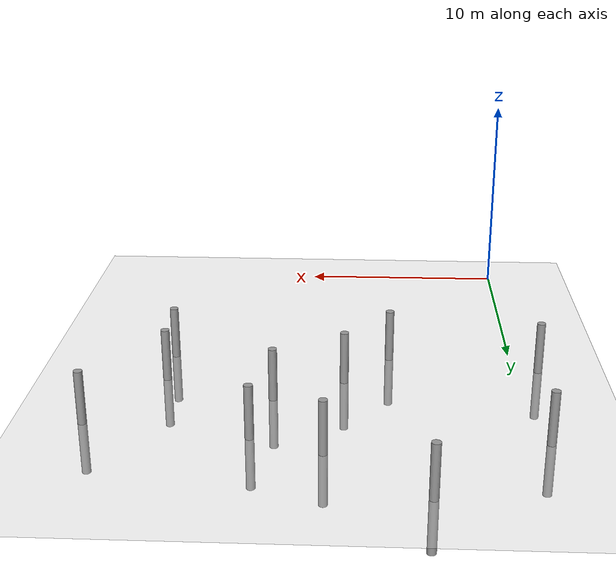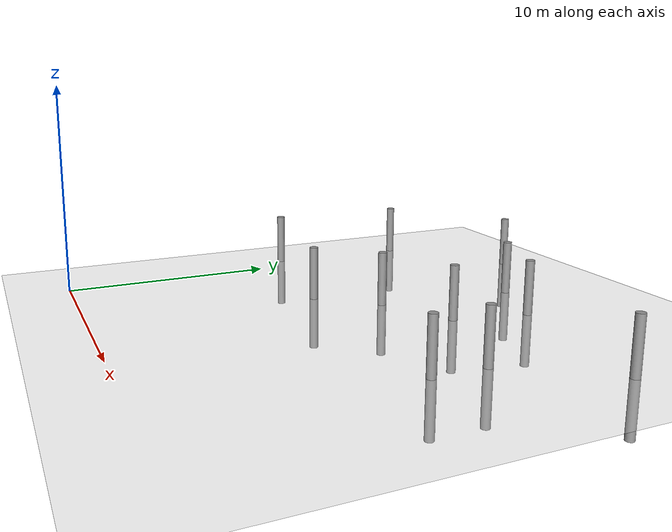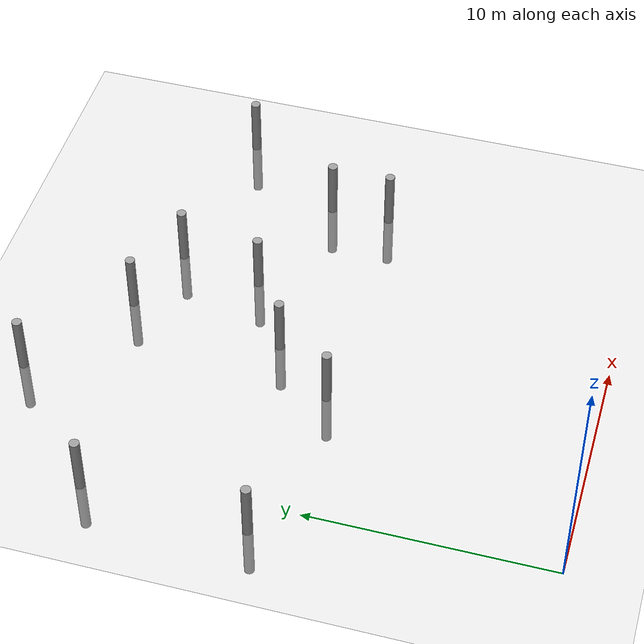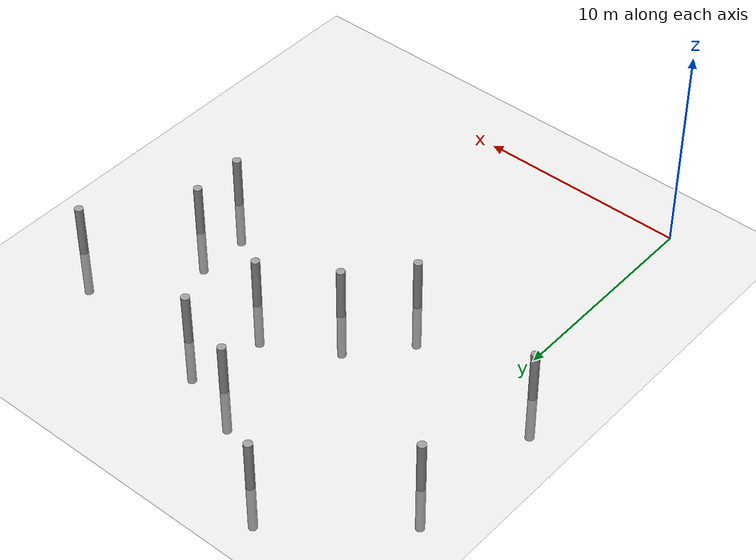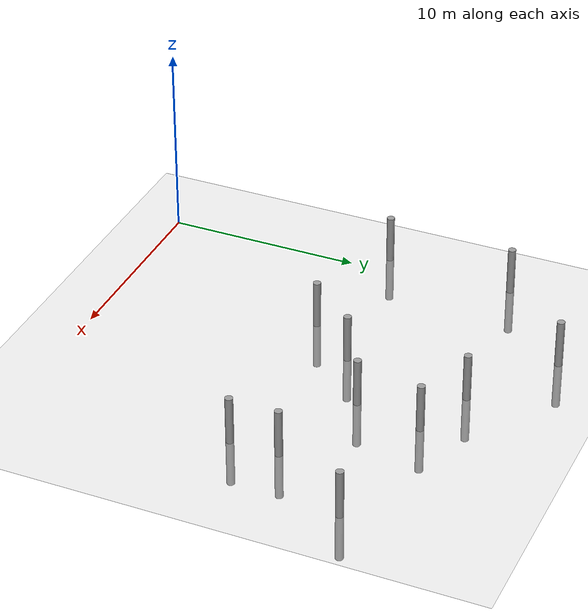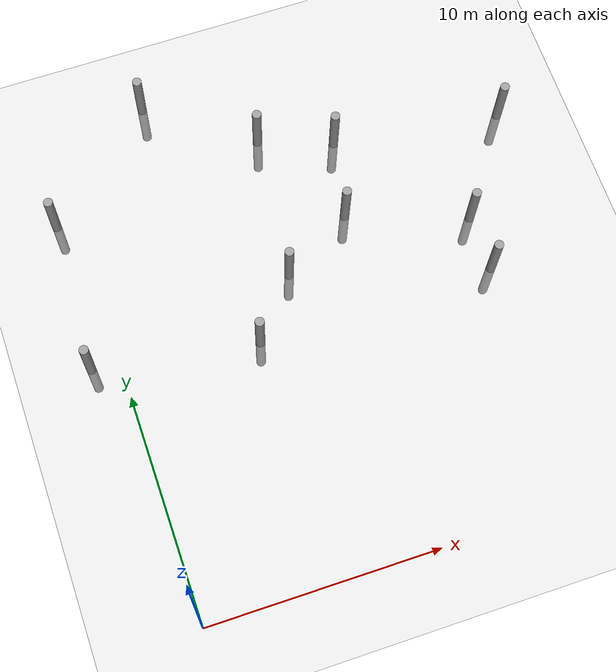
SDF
<sdf version="1.6">
 <world name="default">
  <model name="ground_plane">
   <static>1</static>
   <link name="link">
    <collision name="collision">
     <geometry><plane><normal>0 0 1</normal><size>100 100</size></plane></geometry>
     <surface><friction><ode><mu>100</mu><mu2>50</mu2></ode></friction></surface>
    </collision>
    <visual name="visual">
     <cast_shadows>0</cast_shadows>
     <geometry><plane><normal>0 0 1</normal><size>100 100</size></plane></geometry>
     <material>
      <script><uri>file://media/materials/scripts/gazebo.material</uri><name>Gazebo/Grey</name></script>
     </material>
    </visual>
   </link>
  </model>
  <model name="empty_pillars_4">
   <model name="empty_pillar_clone_13">
    <link name="link">
     <inertial>
      <mass>1</mass>
      <inertia><ixx>0.145833</ixx><ixy>0</ixy><ixz>0</ixz><iyy>0.145833</iyy><iyz>0</iyz><izz>0.125</izz></inertia>
     </inertial>
     <visual name="visual">
      <geometry><cylinder><radius>0.2</radius><length>5</length></cylinder></geometry>
      <material>
       <script><name>Gazebo/Grey</name><uri>file://media/materials/scripts/gazebo.material</uri></script>
       <shader type="vertex"><normal_map>__default__</normal_map></shader>
       <ambient>0.3 0.3 0.3 1</ambient>
       <diffuse>0.7 0.7 0.7 1</diffuse>
       <specular>0.01 0.01 0.01 1</specular>
       <emissive>0 0 0 1</emissive>
      </material>
     </visual>
     <collision name="collision">
      <geometry><cylinder><radius>0.05</radius><length>5</length></cylinder></geometry>
      <surface>
       <friction>
        <ode><mu>1</mu><mu2>1</mu2><fdir1>0 0 0</fdir1><slip1>0</slip1><slip2>0</slip2></ode>
        <torsional>
         <coefficient>1</coefficient>
         <patch_radius>0</patch_radius>
         <surface_radius>0</surface_radius>
         <use_patch_radius>1</use_patch_radius>
         <ode><slip>0</slip></ode>
        </torsional>
       </friction>
       <bounce><restitution_coefficient>0</restitution_coefficient><threshold>1e+06</threshold></bounce>
       <contact>
        <collide_without_contact>0</collide_without_contact>
        <collide_without_contact_bitmask>1</collide_without_contact_bitmask>
        <collide_bitmask>1</collide_bitmask>
        <ode>
         <soft_cfm>0</soft_cfm>
         <soft_erp>0.2</soft_erp>
         <kp>1e+13</kp>
         <kd>1</kd>
         <max_vel>0.01</max_vel>
         <min_depth>0</min_depth>
        </ode>
        <bullet>
         <split_impulse>1</split_impulse>
         <split_impulse_penetration_threshold>-0.01</split_impulse_penetration_threshold>
         <soft_cfm>0</soft_cfm>
         <soft_erp>0.2</soft_erp>
         <kp>1e+13</kp>
         <kd>1</kd>
        </bullet>
       </contact>
      </surface>
     </collision>
    </link>
    <static>0</static>
    <pose>-9.01464 -14.4259 0 0 -0 0</pose>
   </model>
   <model name="empty_pillar_clone_35">
    <link name="link">
     <inertial>
      <mass>1</mass>
      <inertia><ixx>0.145833</ixx><ixy>0</ixy><ixz>0</ixz><iyy>0.145833</iyy><iyz>0</iyz><izz>0.125</izz></inertia>
     </inertial>
     <visual name="visual">
      <geometry><cylinder><radius>0.2</radius><length>5</length></cylinder></geometry>
      <material>
       <script><name>Gazebo/Grey</name><uri>file://media/materials/scripts/gazebo.material</uri></script>
       <shader type="vertex"><normal_map>__default__</normal_map></shader>
       <ambient>0.3 0.3 0.3 1</ambient>
       <diffuse>0.7 0.7 0.7 1</diffuse>
       <specular>0.01 0.01 0.01 1</specular>
       <emissive>0 0 0 1</emissive>
      </material>
     </visual>
     <collision name="collision">
      <geometry><cylinder><radius>0.05</radius><length>5</length></cylinder></geometry>
      <surface>
       <friction>
        <ode><mu>1</mu><mu2>1</mu2><fdir1>0 0 0</fdir1><slip1>0</slip1><slip2>0</slip2></ode>
        <torsional>
         <coefficient>1</coefficient>
         <patch_radius>0</patch_radius>
         <surface_radius>0</surface_radius>
         <use_patch_radius>1</use_patch_radius>
         <ode><slip>0</slip></ode>
        </torsional>
       </friction>
       <bounce><restitution_coefficient>0</restitution_coefficient><threshold>1e+06</threshold></bounce>
       <contact>
        <collide_without_contact>0</collide_without_contact>
        <collide_without_contact_bitmask>1</collide_without_contact_bitmask>
        <collide_bitmask>1</collide_bitmask>
        <ode>
         <soft_cfm>0</soft_cfm>
         <soft_erp>0.2</soft_erp>
         <kp>1e+13</kp>
         <kd>1</kd>
         <max_vel>0.01</max_vel>
         <min_depth>0</min_depth>
        </ode>
        <bullet>
         <split_impulse>1</split_impulse>
         <split_impulse_penetration_threshold>-0.01</split_impulse_penetration_threshold>
         <soft_cfm>0</soft_cfm>
         <soft_erp>0.2</soft_erp>
         <kp>1e+13</kp>
         <kd>1</kd>
        </bullet>
       </contact>
      </surface>
     </collision>
    </link>
    <static>0</static>
    <pose>-19.4431 -17.0281 0 0 -0 0</pose>
   </model>
   <model name="empty_pillar_clone_36">
    <link name="link">
     <inertial>
      <mass>1</mass>
      <inertia><ixx>0.145833</ixx><ixy>0</ixy><ixz>0</ixz><iyy>0.145833</iyy><iyz>0</iyz><izz>0.125</izz></inertia>
     </inertial>
     <visual name="visual">
      <geometry><cylinder><radius>0.2</radius><length>5</length></cylinder></geometry>
      <material>
       <script><name>Gazebo/Grey</name><uri>file://media/materials/scripts/gazebo.material</uri></script>
       <shader type="vertex"><normal_map>__default__</normal_map></shader>
       <ambient>0.3 0.3 0.3 1</ambient>
       <diffuse>0.7 0.7 0.7 1</diffuse>
       <specular>0.01 0.01 0.01 1</specular>
       <emissive>0 0 0 1</emissive>
      </material>
     </visual>
     <collision name="collision">
      <geometry><cylinder><radius>0.05</radius><length>5</length></cylinder></geometry>
      <surface>
       <friction>
        <ode><mu>1</mu><mu2>1</mu2><fdir1>0 0 0</fdir1><slip1>0</slip1><slip2>0</slip2></ode>
        <torsional>
         <coefficient>1</coefficient>
         <patch_radius>0</patch_radius>
         <surface_radius>0</surface_radius>
         <use_patch_radius>1</use_patch_radius>
         <ode><slip>0</slip></ode>
        </torsional>
       </friction>
       <bounce><restitution_coefficient>0</restitution_coefficient><threshold>1e+06</threshold></bounce>
       <contact>
        <collide_without_contact>0</collide_without_contact>
        <collide_without_contact_bitmask>1</collide_without_contact_bitmask>
        <collide_bitmask>1</collide_bitmask>
        <ode>
         <soft_cfm>0</soft_cfm>
         <soft_erp>0.2</soft_erp>
         <kp>1e+13</kp>
         <kd>1</kd>
         <max_vel>0.01</max_vel>
         <min_depth>0</min_depth>
        </ode>
        <bullet>
         <split_impulse>1</split_impulse>
         <split_impulse_penetration_threshold>-0.01</split_impulse_penetration_threshold>
         <soft_cfm>0</soft_cfm>
         <soft_erp>0.2</soft_erp>
         <kp>1e+13</kp>
         <kd>1</kd>
        </bullet>
       </contact>
      </surface>
     </collision>
    </link>
    <static>0</static>
    <pose>-21.0146 -4.84034 0 0 -0 0</pose>
   </model>
   <model name="empty_pillar_clone_37">
    <link name="link">
     <inertial>
      <mass>1</mass>
      <inertia><ixx>0.145833</ixx><ixy>0</ixy><ixz>0</ixz><iyy>0.145833</iyy><iyz>0</iyz><izz>0.125</izz></inertia>
     </inertial>
     <visual name="visual">
      <geometry><cylinder><radius>0.2</radius><length>5</length></cylinder></geometry>
      <material>
       <script><name>Gazebo/Grey</name><uri>file://media/materials/scripts/gazebo.material</uri></script>
       <shader type="vertex"><normal_map>__default__</normal_map></shader>
       <ambient>0.3 0.3 0.3 1</ambient>
       <diffuse>0.7 0.7 0.7 1</diffuse>
       <specular>0.01 0.01 0.01 1</specular>
       <emissive>0 0 0 1</emissive>
      </material>
     </visual>
     <collision name="collision">
      <geometry><cylinder><radius>0.05</radius><length>5</length></cylinder></geometry>
      <surface>
       <friction>
        <ode><mu>1</mu><mu2>1</mu2><fdir1>0 0 0</fdir1><slip1>0</slip1><slip2>0</slip2></ode>
        <torsional>
         <coefficient>1</coefficient>
         <patch_radius>0</patch_radius>
         <surface_radius>0</surface_radius>
         <use_patch_radius>1</use_patch_radius>
         <ode><slip>0</slip></ode>
        </torsional>
       </friction>
       <bounce><restitution_coefficient>0</restitution_coefficient><threshold>1e+06</threshold></bounce>
       <contact>
        <collide_without_contact>0</collide_without_contact>
        <collide_without_contact_bitmask>1</collide_without_contact_bitmask>
        <collide_bitmask>1</collide_bitmask>
        <ode>
         <soft_cfm>0</soft_cfm>
         <soft_erp>0.2</soft_erp>
         <kp>1e+13</kp>
         <kd>1</kd>
         <max_vel>0.01</max_vel>
         <min_depth>0</min_depth>
        </ode>
        <bullet>
         <split_impulse>1</split_impulse>
         <split_impulse_penetration_threshold>-0.01</split_impulse_penetration_threshold>
         <soft_cfm>0</soft_cfm>
         <soft_erp>0.2</soft_erp>
         <kp>1e+13</kp>
         <kd>1</kd>
        </bullet>
       </contact>
      </surface>
     </collision>
    </link>
    <static>0</static>
    <pose>-16.6035 -7.98282 0 0 -0 0</pose>
   </model>
   <model name="empty_pillar_clone_39">
    <link name="link">
     <inertial>
      <mass>1</mass>
      <inertia><ixx>0.145833</ixx><ixy>0</ixy><ixz>0</ixz><iyy>0.145833</iyy><iyz>0</iyz><izz>0.125</izz></inertia>
     </inertial>
     <visual name="visual">
      <geometry><cylinder><radius>0.2</radius><length>5</length></cylinder></geometry>
      <material>
       <script><name>Gazebo/Grey</name><uri>file://media/materials/scripts/gazebo.material</uri></script>
       <shader type="vertex"><normal_map>__default__</normal_map></shader>
       <ambient>0.3 0.3 0.3 1</ambient>
       <diffuse>0.7 0.7 0.7 1</diffuse>
       <specular>0.01 0.01 0.01 1</specular>
       <emissive>0 0 0 1</emissive>
      </material>
     </visual>
     <collision name="collision">
      <geometry><cylinder><radius>0.05</radius><length>5</length></cylinder></geometry>
      <surface>
       <friction>
        <ode><mu>1</mu><mu2>1</mu2><fdir1>0 0 0</fdir1><slip1>0</slip1><slip2>0</slip2></ode>
        <torsional>
         <coefficient>1</coefficient>
         <patch_radius>0</patch_radius>
         <surface_radius>0</surface_radius>
         <use_patch_radius>1</use_patch_radius>
         <ode><slip>0</slip></ode>
        </torsional>
       </friction>
       <bounce><restitution_coefficient>0</restitution_coefficient><threshold>1e+06</threshold></bounce>
       <contact>
        <collide_without_contact>0</collide_without_contact>
        <collide_without_contact_bitmask>1</collide_without_contact_bitmask>
        <collide_bitmask>1</collide_bitmask>
        <ode>
         <soft_cfm>0</soft_cfm>
         <soft_erp>0.2</soft_erp>
         <kp>1e+13</kp>
         <kd>1</kd>
         <max_vel>0.01</max_vel>
         <min_depth>0</min_depth>
        </ode>
        <bullet>
         <split_impulse>1</split_impulse>
         <split_impulse_penetration_threshold>-0.01</split_impulse_penetration_threshold>
         <soft_cfm>0</soft_cfm>
         <soft_erp>0.2</soft_erp>
         <kp>1e+13</kp>
         <kd>1</kd>
        </bullet>
       </contact>
      </surface>
     </collision>
    </link>
    <static>0</static>
    <pose>-13.4361 -9.12638 0 0 -0 0</pose>
   </model>
   <model name="empty_pillar_clone_40">
    <link name="link">
     <inertial>
      <mass>1</mass>
      <inertia><ixx>0.145833</ixx><ixy>0</ixy><ixz>0</ixz><iyy>0.145833</iyy><iyz>0</iyz><izz>0.125</izz></inertia>
     </inertial>
     <visual name="visual">
      <geometry><cylinder><radius>0.2</radius><length>5</length></cylinder></geometry>
      <material>
       <script><name>Gazebo/Grey</name><uri>file://media/materials/scripts/gazebo.material</uri></script>
       <shader type="vertex"><normal_map>__default__</normal_map></shader>
       <ambient>0.3 0.3 0.3 1</ambient>
       <diffuse>0.7 0.7 0.7 1</diffuse>
       <specular>0.01 0.01 0.01 1</specular>
       <emissive>0 0 0 1</emissive>
      </material>
     </visual>
     <collision name="collision">
      <geometry><cylinder><radius>0.05</radius><length>5</length></cylinder></geometry>
      <surface>
       <friction>
        <ode><mu>1</mu><mu2>1</mu2><fdir1>0 0 0</fdir1><slip1>0</slip1><slip2>0</slip2></ode>
        <torsional>
         <coefficient>1</coefficient>
         <patch_radius>0</patch_radius>
         <surface_radius>0</surface_radius>
         <use_patch_radius>1</use_patch_radius>
         <ode><slip>0</slip></ode>
        </torsional>
       </friction>
       <bounce><restitution_coefficient>0</restitution_coefficient><threshold>1e+06</threshold></bounce>
       <contact>
        <collide_without_contact>0</collide_without_contact>
        <collide_without_contact_bitmask>1</collide_without_contact_bitmask>
        <collide_bitmask>1</collide_bitmask>
        <ode>
         <soft_cfm>0</soft_cfm>
         <soft_erp>0.2</soft_erp>
         <kp>1e+13</kp>
         <kd>1</kd>
         <max_vel>0.01</max_vel>
         <min_depth>0</min_depth>
        </ode>
        <bullet>
         <split_impulse>1</split_impulse>
         <split_impulse_penetration_threshold>-0.01</split_impulse_penetration_threshold>
         <soft_cfm>0</soft_cfm>
         <soft_erp>0.2</soft_erp>
         <kp>1e+13</kp>
         <kd>1</kd>
        </bullet>
       </contact>
      </surface>
     </collision>
    </link>
    <static>0</static>
    <pose>-17.318 -14.4851 0 0 -0 0</pose>
   </model>
   <model name="empty_pillar_clone_41">
    <link name="link">
     <inertial>
      <mass>1</mass>
      <inertia><ixx>0.145833</ixx><ixy>0</ixy><ixz>0</ixz><iyy>0.145833</iyy><iyz>0</iyz><izz>0.125</izz></inertia>
     </inertial>
     <visual name="visual">
      <geometry><cylinder><radius>0.2</radius><length>5</length></cylinder></geometry>
      <material>
       <script><name>Gazebo/Grey</name><uri>file://media/materials/scripts/gazebo.material</uri></script>
       <shader type="vertex"><normal_map>__default__</normal_map></shader>
       <ambient>0.3 0.3 0.3 1</ambient>
       <diffuse>0.7 0.7 0.7 1</diffuse>
       <specular>0.01 0.01 0.01 1</specular>
       <emissive>0 0 0 1</emissive>
      </material>
     </visual>
     <collision name="collision">
      <geometry><cylinder><radius>0.05</radius><length>5</length></cylinder></geometry>
      <surface>
       <friction>
        <ode><mu>1</mu><mu2>1</mu2><fdir1>0 0 0</fdir1><slip1>0</slip1><slip2>0</slip2></ode>
        <torsional>
         <coefficient>1</coefficient>
         <patch_radius>0</patch_radius>
         <surface_radius>0</surface_radius>
         <use_patch_radius>1</use_patch_radius>
         <ode><slip>0</slip></ode>
        </torsional>
       </friction>
       <bounce><restitution_coefficient>0</restitution_coefficient><threshold>1e+06</threshold></bounce>
       <contact>
        <collide_without_contact>0</collide_without_contact>
        <collide_without_contact_bitmask>1</collide_without_contact_bitmask>
        <collide_bitmask>1</collide_bitmask>
        <ode>
         <soft_cfm>0</soft_cfm>
         <soft_erp>0.2</soft_erp>
         <kp>1e+13</kp>
         <kd>1</kd>
         <max_vel>0.01</max_vel>
         <min_depth>0</min_depth>
        </ode>
        <bullet>
         <split_impulse>1</split_impulse>
         <split_impulse_penetration_threshold>-0.01</split_impulse_penetration_threshold>
         <soft_cfm>0</soft_cfm>
         <soft_erp>0.2</soft_erp>
         <kp>1e+13</kp>
         <kd>1</kd>
        </bullet>
       </contact>
      </surface>
     </collision>
    </link>
    <static>0</static>
    <pose>-14.1448 -12.6326 0 0 -0 0</pose>
   </model>
   <model name="empty_pillar_clone_45">
    <link name="link">
     <inertial>
      <mass>1</mass>
      <inertia><ixx>0.145833</ixx><ixy>0</ixy><ixz>0</ixz><iyy>0.145833</iyy><iyz>0</iyz><izz>0.125</izz></inertia>
     </inertial>
     <visual name="visual">
      <geometry><cylinder><radius>0.2</radius><length>5</length></cylinder></geometry>
      <material>
       <script><name>Gazebo/Grey</name><uri>file://media/materials/scripts/gazebo.material</uri></script>
       <shader type="vertex"><normal_map>__default__</normal_map></shader>
       <ambient>0.3 0.3 0.3 1</ambient>
       <diffuse>0.7 0.7 0.7 1</diffuse>
       <specular>0.01 0.01 0.01 1</specular>
       <emissive>0 0 0 1</emissive>
      </material>
     </visual>
     <collision name="collision">
      <geometry><cylinder><radius>0.05</radius><length>5</length></cylinder></geometry>
      <surface>
       <friction>
        <ode><mu>1</mu><mu2>1</mu2><fdir1>0 0 0</fdir1><slip1>0</slip1><slip2>0</slip2></ode>
        <torsional>
         <coefficient>1</coefficient>
         <patch_radius>0</patch_radius>
         <surface_radius>0</surface_radius>
         <use_patch_radius>1</use_patch_radius>
         <ode><slip>0</slip></ode>
        </torsional>
       </friction>
       <bounce><restitution_coefficient>0</restitution_coefficient><threshold>1e+06</threshold></bounce>
       <contact>
        <collide_without_contact>0</collide_without_contact>
        <collide_without_contact_bitmask>1</collide_without_contact_bitmask>
        <collide_bitmask>1</collide_bitmask>
        <ode>
         <soft_cfm>0</soft_cfm>
         <soft_erp>0.2</soft_erp>
         <kp>1e+13</kp>
         <kd>1</kd>
         <max_vel>0.01</max_vel>
         <min_depth>0</min_depth>
        </ode>
        <bullet>
         <split_impulse>1</split_impulse>
         <split_impulse_penetration_threshold>-0.01</split_impulse_penetration_threshold>
         <soft_cfm>0</soft_cfm>
         <soft_erp>0.2</soft_erp>
         <kp>1e+13</kp>
         <kd>1</kd>
        </bullet>
       </contact>
      </surface>
     </collision>
    </link>
    <static>0</static>
    <pose>-9.01076 -16.9307 0 0 -0 0</pose>
   </model>
   <model name="empty_pillar_clone_5">
    <link name="link">
     <inertial>
      <mass>1</mass>
      <inertia><ixx>0.145833</ixx><ixy>0</ixy><ixz>0</ixz><iyy>0.145833</iyy><iyz>0</iyz><izz>0.125</izz></inertia>
     </inertial>
     <visual name="visual">
      <geometry><cylinder><radius>0.2</radius><length>5</length></cylinder></geometry>
      <material>
       <script><name>Gazebo/Grey</name><uri>file://media/materials/scripts/gazebo.material</uri></script>
       <shader type="vertex"><normal_map>__default__</normal_map></shader>
       <ambient>0.3 0.3 0.3 1</ambient>
       <diffuse>0.7 0.7 0.7 1</diffuse>
       <specular>0.01 0.01 0.01 1</specular>
       <emissive>0 0 0 1</emissive>
      </material>
     </visual>
     <collision name="collision">
      <geometry><cylinder><radius>0.05</radius><length>5</length></cylinder></geometry>
      <surface>
       <friction>
        <ode><mu>1</mu><mu2>1</mu2><fdir1>0 0 0</fdir1><slip1>0</slip1><slip2>0</slip2></ode>
        <torsional>
         <coefficient>1</coefficient>
         <patch_radius>0</patch_radius>
         <surface_radius>0</surface_radius>
         <use_patch_radius>1</use_patch_radius>
         <ode><slip>0</slip></ode>
        </torsional>
       </friction>
       <bounce><restitution_coefficient>0</restitution_coefficient><threshold>1e+06</threshold></bounce>
       <contact>
        <collide_without_contact>0</collide_without_contact>
        <collide_without_contact_bitmask>1</collide_without_contact_bitmask>
        <collide_bitmask>1</collide_bitmask>
        <ode>
         <soft_cfm>0</soft_cfm>
         <soft_erp>0.2</soft_erp>
         <kp>1e+13</kp>
         <kd>1</kd>
         <max_vel>0.01</max_vel>
         <min_depth>0</min_depth>
        </ode>
        <bullet>
         <split_impulse>1</split_impulse>
         <split_impulse_penetration_threshold>-0.01</split_impulse_penetration_threshold>
         <soft_cfm>0</soft_cfm>
         <soft_erp>0.2</soft_erp>
         <kp>1e+13</kp>
         <kd>1</kd>
        </bullet>
       </contact>
      </surface>
     </collision>
    </link>
    <static>0</static>
    <pose>-6.03595 -10.0932 0 0 -0 0</pose>
   </model>
   <static>0</static>
   <pose>25.2837 27.6164 0 0 -0 0</pose>
  </model>
  <model name="empty_pillars_5">
   <model name="empty_pillar_clone_54">
    <link name="link">
     <inertial>
      <mass>1</mass>
      <inertia><ixx>0.145833</ixx><ixy>0</ixy><ixz>0</ixz><iyy>0.145833</iyy><iyz>0</iyz><izz>0.125</izz></inertia>
     </inertial>
     <visual name="visual">
      <geometry><cylinder><radius>0.2</radius><length>5</length></cylinder></geometry>
      <material>
       <script><name>Gazebo/Grey</name><uri>file://media/materials/scripts/gazebo.material</uri></script>
       <shader type="vertex"><normal_map>__default__</normal_map></shader>
       <ambient>0.3 0.3 0.3 1</ambient>
       <diffuse>0.7 0.7 0.7 1</diffuse>
       <specular>0.01 0.01 0.01 1</specular>
       <emissive>0 0 0 1</emissive>
      </material>
     </visual>
     <collision name="collision">
      <geometry><cylinder><radius>0.05</radius><length>5</length></cylinder></geometry>
      <surface>
       <friction>
        <ode><mu>1</mu><mu2>1</mu2><fdir1>0 0 0</fdir1><slip1>0</slip1><slip2>0</slip2></ode>
        <torsional>
         <coefficient>1</coefficient>
         <patch_radius>0</patch_radius>
         <surface_radius>0</surface_radius>
         <use_patch_radius>1</use_patch_radius>
         <ode><slip>0</slip></ode>
        </torsional>
       </friction>
       <bounce><restitution_coefficient>0</restitution_coefficient><threshold>1e+06</threshold></bounce>
       <contact>
        <collide_without_contact>0</collide_without_contact>
        <collide_without_contact_bitmask>1</collide_without_contact_bitmask>
        <collide_bitmask>1</collide_bitmask>
        <ode>
         <soft_cfm>0</soft_cfm>
         <soft_erp>0.2</soft_erp>
         <kp>1e+13</kp>
         <kd>1</kd>
         <max_vel>0.01</max_vel>
         <min_depth>0</min_depth>
        </ode>
        <bullet>
         <split_impulse>1</split_impulse>
         <split_impulse_penetration_threshold>-0.01</split_impulse_penetration_threshold>
         <soft_cfm>0</soft_cfm>
         <soft_erp>0.2</soft_erp>
         <kp>1e+13</kp>
         <kd>1</kd>
        </bullet>
       </contact>
      </surface>
     </collision>
    </link>
    <static>0</static>
    <pose>24.557 -15.8784 0 0 -0 0</pose>
   </model>
   <model name="empty_pillar_clone_6">
    <link name="link">
     <inertial>
      <mass>1</mass>
      <inertia><ixx>0.145833</ixx><ixy>0</ixy><ixz>0</ixz><iyy>0.145833</iyy><iyz>0</iyz><izz>0.125</izz></inertia>
     </inertial>
     <visual name="visual">
      <geometry><cylinder><radius>0.2</radius><length>5</length></cylinder></geometry>
      <material>
       <script><name>Gazebo/Grey</name><uri>file://media/materials/scripts/gazebo.material</uri></script>
       <shader type="vertex"><normal_map>__default__</normal_map></shader>
       <ambient>0.3 0.3 0.3 1</ambient>
       <diffuse>0.7 0.7 0.7 1</diffuse>
       <specular>0.01 0.01 0.01 1</specular>
       <emissive>0 0 0 1</emissive>
      </material>
     </visual>
     <collision name="collision">
      <geometry><cylinder><radius>0.05</radius><length>5</length></cylinder></geometry>
      <surface>
       <friction>
        <ode><mu>1</mu><mu2>1</mu2><fdir1>0 0 0</fdir1><slip1>0</slip1><slip2>0</slip2></ode>
        <torsional>
         <coefficient>1</coefficient>
         <patch_radius>0</patch_radius>
         <surface_radius>0</surface_radius>
         <use_patch_radius>1</use_patch_radius>
         <ode><slip>0</slip></ode>
        </torsional>
       </friction>
       <bounce><restitution_coefficient>0</restitution_coefficient><threshold>1e+06</threshold></bounce>
       <contact>
        <collide_without_contact>0</collide_without_contact>
        <collide_without_contact_bitmask>1</collide_without_contact_bitmask>
        <collide_bitmask>1</collide_bitmask>
        <ode>
         <soft_cfm>0</soft_cfm>
         <soft_erp>0.2</soft_erp>
         <kp>1e+13</kp>
         <kd>1</kd>
         <max_vel>0.01</max_vel>
         <min_depth>0</min_depth>
        </ode>
        <bullet>
         <split_impulse>1</split_impulse>
         <split_impulse_penetration_threshold>-0.01</split_impulse_penetration_threshold>
         <soft_cfm>0</soft_cfm>
         <soft_erp>0.2</soft_erp>
         <kp>1e+13</kp>
         <kd>1</kd>
        </bullet>
       </contact>
      </surface>
     </collision>
    </link>
    <static>0</static>
    <pose>24.9156 -9.11394 0 0 -0 0</pose>
   </model>
   <static>0</static>
   <pose>-25.786 27.5577 0 0 -0 0</pose>
  </model>
 </world>
</sdf>
